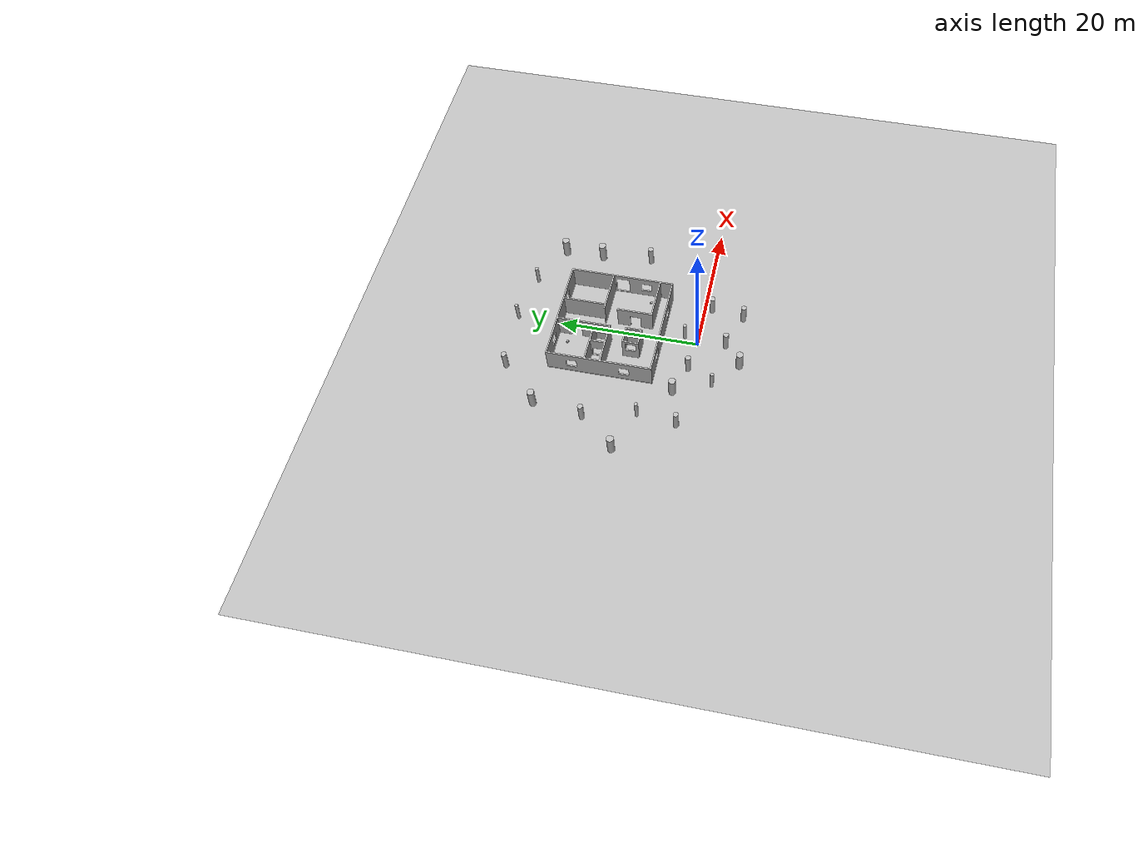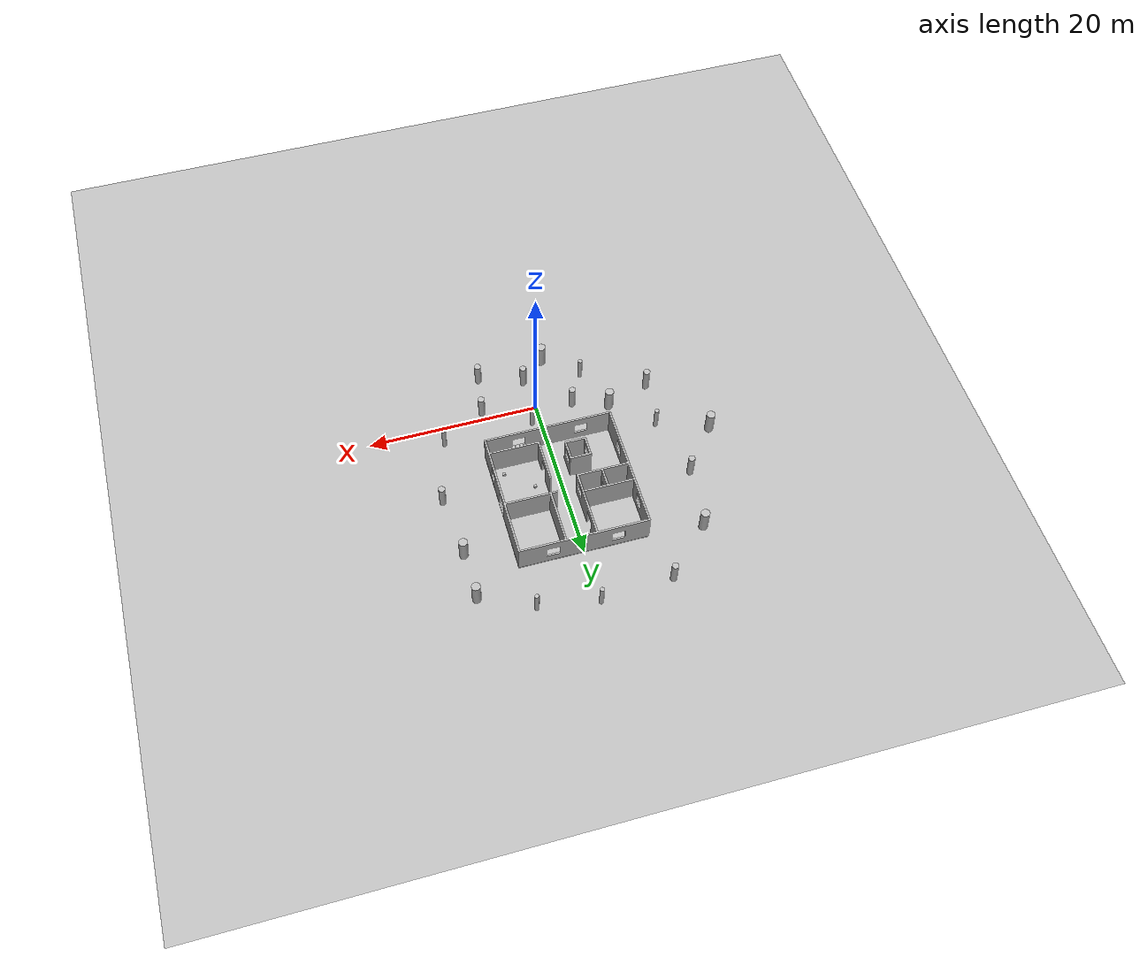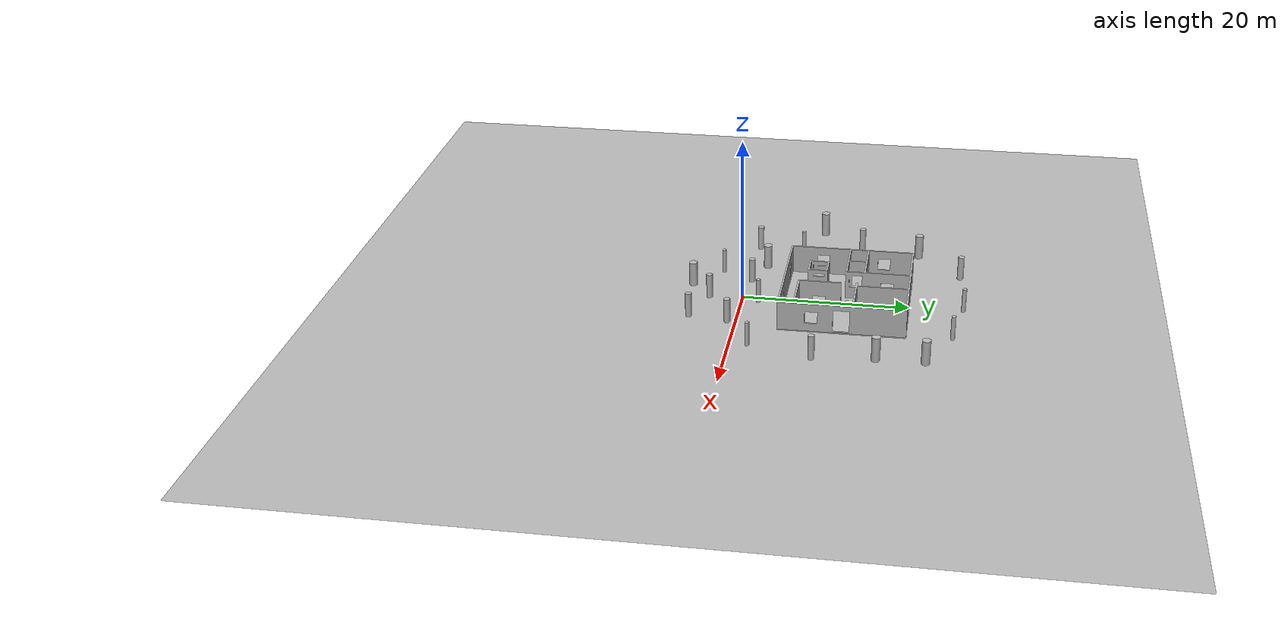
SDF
<?xml version="1.0"?>
<sdf version="1.5">
    <world name="default">
        <include>
            <uri>model://sun</uri>
        </include>

        <include>
            <uri>model://ground_my</uri>
        </include>

        <include>
            <uri>model://house_test</uri>
            <static>true</static>
            <pose>0 0 0 0 0 0</pose>
        </include>

        <include>
            <uri>model://platform</uri>
            <static>true</static>
            <pose>0 0 0 0 0 0</pose>
        </include>

        <include>
            <name>cube</name>
            <uri>model://cube</uri>
            <static>true</static>
        </include>

        <include>
            <name>cylinder1</name>
            <uri>model://cylinder_0.5</uri>
            <static>true</static>
	    <pose>1 2 0 0 0 0</pose>
        </include>

        <include>
            <name>cylinder2</name>
            <uri>model://cylinder_0.75</uri>
            <static>true</static>
	    <pose>0.5 -4 0 0 0 0</pose>
        </include>

        <include>
            <name>cylinder3</name>
            <uri>model://cylinder_0.75</uri>
            <static>true</static>
	    <pose>-4.261650 0.517731 0 0 0 0</pose>
        </include>

        <include>
            <name>cylinder4</name>
            <uri>model://cylinder_1</uri>
            <static>true</static>
	    <pose>-8.369270 1.941560 0 0 0 0</pose>
        </include>

        <include>
            <name>cylinder5</name>
            <uri>model://cylinder_0.5</uri>
            <static>true</static>
	    <pose>-6.326930 -3.247220 0 0 0 0</pose>
        </include>

        <include>
            <name>cylinder6</name>
            <uri>model://cylinder_0.75</uri>
            <static>true</static>
	    <pose>6.353330 -0.994188 0 0 0 0</pose>
        </include>

        <include>
            <name>cylinder7</name>
            <uri>model://cylinder_0.75</uri>
            <static>true</static>
	    <pose>5.610560 -5.693910 0 0 0 0</pose>
        </include>

        <include>
            <name>cylinder8</name>
            <uri>model://cylinder_1</uri>
            <static>true</static>
	    <pose>-2.407050 -6.457540 0 0 0 0</pose>
        </include>

        <include>
            <name>cylinder9</name>
            <uri>model://cylinder_0.5</uri>
            <static>true</static>
	    <pose>11.592900 2.114720 0 0 0 0</pose>
        </include>

        <include>
            <name>cylinder10</name>
            <uri>model://cylinder_0.75</uri>
            <static>true</static>
	    <pose>13.594300 9.659100 0 0 0 0</pose>
        </include>

        <include>
            <name>cylinder11</name>
            <uri>model://cylinder_1</uri>
            <static>true</static>
	    <pose>12.917700 16.872900 0 0 0 0</pose>
        </include>

        <include>
            <name>cylinder12</name>
            <uri>model://cylinder_0.5</uri>
            <static>true</static>
	    <pose>-12.875100 5.961400 0 0 0 0</pose>
        </include>

        <include>
            <name>cylinder13</name>
            <uri>model://cylinder_0.75</uri>
            <static>true</static>
	    <pose>-14.646100 13.250200 0 0 0 0</pose>
        </include>

       <include>
            <name>cylinder14</name>
            <uri>model://cylinder_1</uri>
            <static>true</static>
	    <pose>-13.739100 20.430700 0 0 0 0</pose>
        </include>

       <include>
            <name>cylinder15</name>
            <uri>model://cylinder_0.75</uri>
            <static>true</static>
	    <pose>-8.459440 25.762800 0 0 0 0</pose>
        </include>

       <include>
            <name>cylinder16</name>
            <uri>model://cylinder_0.5</uri>
            <static>true</static>
	    <pose>-0.042245 26.367100 0 0 0 0</pose>
        </include>

       <include>
            <name>cylinder17</name>
            <uri>model://cylinder_0.5</uri>
            <static>true</static>
	    <pose>6.886590 25.292700 0 0 0 0</pose>
        </include>

       <include>
            <name>cylinder18</name>
            <uri>model://cylinder_0.75</uri>
            <static>true</static>
	    <pose>-13.456100 0.371370 0 0 0 0</pose>
        </include>

       <include>
            <name>cylinder19</name>
            <uri>model://cylinder_1</uri>
            <static>true</static>
	    <pose>-18.714200 8.157500 0 0 0 0</pose>
        </include>

       <include>
            <name>cylinder20</name>
            <uri>model://cylinder_1</uri>
            <static>true</static>
	    <pose>12.869900 22.464000 0 0 0 0</pose>
        </include>

      <physics name='default_physics' default='0' type='ode'>
      <gravity>0 0 -9.8066</gravity>
      <ode>
        <solver>
          <type>quick</type>
          <iters>10</iters>
          <sor>1.3</sor>
          <use_dynamic_moi_rescaling>0</use_dynamic_moi_rescaling>
        </solver>
        <constraints>
          <cfm>0</cfm>
          <erp>0.2</erp>
          <contact_max_correcting_vel>100</contact_max_correcting_vel>
          <contact_surface_layer>0.001</contact_surface_layer>
        </constraints>
      </ode>
      <max_step_size>0.004</max_step_size>
      <real_time_factor>1</real_time_factor>
      <real_time_update_rate>250</real_time_update_rate>
      <magnetic_field>6.0e-6 2.3e-5 -4.2e-5</magnetic_field>
    </physics>

     </world>
</sdf>

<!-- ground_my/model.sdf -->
<sdf version="1.5">
    <model name="ground">
        <static>true</static>
        <link name="link">
            <collision name="collision">
                <geometry>
                    <mesh>
                        <scale>1 1 1</scale>
                        <uri>model://ground_my/meshes/ground.dae</uri>
                    </mesh>
                    <surface>
                    <friction>
                        <ode>
                            <mu>1.2</mu>
                            <mu2>1.2</mu2>
                        </ode>
                    </friction>
                    </surface>
                </geometry>
            </collision>
            <visual name="visual">
              <geometry>
                <mesh>
                    <scale>1 1 1</scale>
                    <uri>model://ground_my/meshes/ground.dae</uri>
                </mesh>
              </geometry>
             </visual>
        </link>
    </model>
</sdf>

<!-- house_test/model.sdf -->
<sdf version="1.5">
    <model name="house">
        <static>true</static>
        <link name="link">
            <collision name="collision1">
                <pose>0 12.5 0 0 0 0</pose>
                <geometry>
                    <mesh>
                        <uri>model://house_test/meshes/house_walls.stl</uri>
                    </mesh>
                </geometry>
            </collision>
            <visual name="visual_walls">
              <pose>0 12.5 0 0 0 0</pose>
              <geometry>
              <mesh>
                 <uri>model://house_test/meshes/house_walls_wallpapers.dae</uri>
              </mesh>
              </geometry>
              <material>
                  <script>
                      <uri>model://house_test/materials/scripts</uri>
                      <uri>model://house_test/materials/textures</uri>
                      <name>houseMat/Diffuse</name>
                  </script>
              </material>
             </visual>

             <collision name="collision2">
                <pose>0 12.5 0 0 0 0</pose>
                <geometry>
                    <mesh>
                        <uri>model://house_test/meshes/house_flor.stl</uri>
                    </mesh>
                </geometry>
            </collision>
            <visual name="visual_flor">
              <pose>0 12.5 0 0 0 0</pose>
              <geometry>
              <mesh>
                 <uri>model://house_test/meshes/house_flor_wallpapers.dae</uri>
              </mesh>
              </geometry>
              <material>
                  <script>
                      <uri>model://house_test/materials/scripts</uri>
                      <uri>model://house_test/materials/textures</uri>
                      <name>houseMat/Diffuse</name>
                  </script>
              </material>
             </visual>

        </link>
    </model>
</sdf>

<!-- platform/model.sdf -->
<sdf version="1.6">
  <model name="platform">
    <static>false</static>
    <link name="dummy_upper"/>

    <joint name="world_joint" type="fixed">
      <parent>world</parent>
      <child>dummy_upper</child>
    </joint>
  </model>
</sdf>

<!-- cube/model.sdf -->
<sdf version="1.5">
    <model name="cube">
        <static>true</static>
        <link name="link">
            <collision name="collision1">
                <pose>0 12.5 0.1 0 0 0</pose>
                <geometry>
                    <mesh>
                        <uri>model://cube/meshes/cube.dae</uri>
                    </mesh>
                </geometry>
            </collision>
            <visual name="visual1">

              <pose>0 12.5 0.1 0 0 0</pose>
              <geometry>
              <mesh>
                 <uri>model://cube/meshes/cube.dae</uri>
              </mesh>
              </geometry>

              <material>
                  <script>
                      <uri>model://cube/materials/scripts</uri>
                      <uri>model://cube/materials/textures</uri>
                      <name>cubeMat/Diffuse</name>
                  </script>
              </material>
             </visual>

             <collision name="collision2">
                <pose>3 10.5 0.1 0 0 0</pose>
                <geometry>
                    <mesh>
                        <uri>model://cube/meshes/cube.dae</uri>
                    </mesh>
                </geometry>
            </collision>
            <visual name="visual2">

              <pose>3 10.5 0.1 0 0 0</pose>
              <geometry>
              <mesh>
                 <uri>model://cube/meshes/cube.dae</uri>
              </mesh>
              </geometry>

              <material>
                  <script>
                      <uri>model://cube/materials/scripts</uri>
                      <uri>model://cube/materials/textures</uri>
                      <name>cubeMat/Diffuse</name>
                  </script>
              </material>
             </visual>

             <collision name="collision3">
                <pose>-3 9 0.1 0 0 0</pose>
                <geometry>
                    <mesh>
                        <uri>model://cube/meshes/cube.dae</uri>
                    </mesh>
                </geometry>
            </collision>
            <visual name="visual3">

              <pose>-3 9 0.1 0 0 0</pose>
              <geometry>
              <mesh>
                 <uri>model://cube/meshes/cube.dae</uri>
              </mesh>
              </geometry>

              <material>
                  <script>
                      <uri>model://cube/materials/scripts</uri>
                      <uri>model://cube/materials/textures</uri>
                      <name>cubeMat/Diffuse</name>
                  </script>
              </material>
             </visual>

             <collision name="collision4">
                <pose>6 8 0.1 0 0 0</pose>
                <geometry>
                    <mesh>
                        <uri>model://cube/meshes/cube.dae</uri>
                    </mesh>
                </geometry>
            </collision>
            <visual name="visual4">

              <pose>6 8 0.1 0 0 0</pose>
              <geometry>
              <mesh>
                 <uri>model://cube/meshes/cube.dae</uri>
              </mesh>
              </geometry>

              <material>
                  <script>
                      <uri>model://cube/materials/scripts</uri>
                      <uri>model://cube/materials/textures</uri>
                      <name>cubeMat/Diffuse</name>
                  </script>
              </material>
             </visual>

             <collision name="collision5">
                <pose>-3 18.3 0.1 0 0 0</pose>
                <geometry>
                    <mesh>
                        <uri>model://cube/meshes/cube.dae</uri>
                    </mesh>
                </geometry>
            </collision>
            <visual name="visual5">

              <pose>-3 18.3 0.1 0 0 0</pose>
              <geometry>
              <mesh>
                 <uri>model://cube/meshes/cube.dae</uri>
              </mesh>
              </geometry>

              <material>
                  <script>
                      <uri>model://cube/materials/scripts</uri>
                      <uri>model://cube/materials/textures</uri>
                      <name>cubeMat/Diffuse</name>
                  </script>
              </material>
             </visual>
        </link>
    </model>
</sdf>

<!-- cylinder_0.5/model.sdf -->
<sdf version="1.5">
    <model name="cylinder_05">
        <static>true</static>
        <link name="link">
            <collision name="collision1">
                <pose>0 0 0 0 0 0</pose>
                <geometry>
                    <mesh>
                        <uri>model://cylinder_0.5/meshes/cylinder_0_5.stl</uri>
                    </mesh>
                </geometry>
            </collision>
            <visual name="visual1">

              <pose>0 0 0 0 0 0</pose>
              <geometry>
              <mesh>
                 <uri>model://cylinder_0.5/meshes/cylinder_0_5.dae</uri>
              </mesh>
              </geometry>
             </visual>
        </link>
    </model>
</sdf>

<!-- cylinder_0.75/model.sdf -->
<sdf version="1.5">
    <model name="cylinder_075">
        <static>true</static>
        <link name="link">
            <collision name="collision1">
                <pose>0 0 0 0 0 0</pose>
                <geometry>
                    <mesh>
                        <uri>model://cylinder_0.75/meshes/cylinder_0_75.stl</uri>
                    </mesh>
                </geometry>
            </collision>
            <visual name="visual1">

              <pose>0 0 0 0 0 0</pose>
              <geometry>
              <mesh>
                 <uri>model://cylinder_0.75/meshes/cylinder_0_75.dae</uri>
              </mesh>
              </geometry>
            </visual>

        </link>
    </model>
</sdf>

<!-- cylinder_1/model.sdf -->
<sdf version="1.5">
    <model name="cylinder_1">
        <static>true</static>
        <link name="link">
            <collision name="collision1">
                <pose>0 0 0 0 0 0</pose>
                <geometry>
                    <mesh>
                        <uri>model://cylinder_1/meshes/cylinder_1.stl</uri>
                    </mesh>
                </geometry>
            </collision>
            <visual name="visual1">

              <pose>0 0 0 0 0 0</pose>
              <geometry>
              <mesh>
                 <uri>model://cylinder_1/meshes/cylinder_1.dae</uri>
              </mesh>
              </geometry>
             </visual>
        </link>
    </model>
</sdf>
